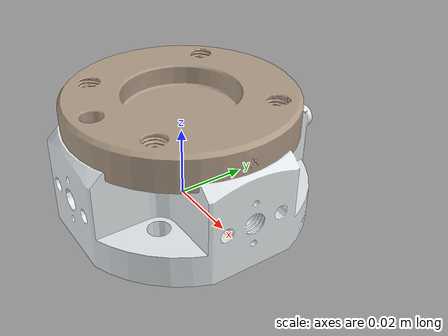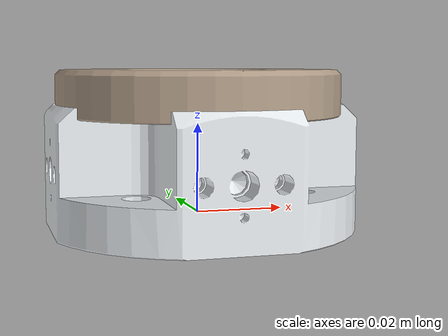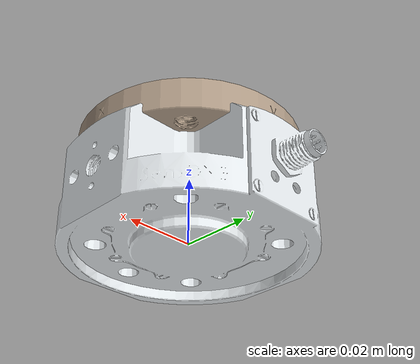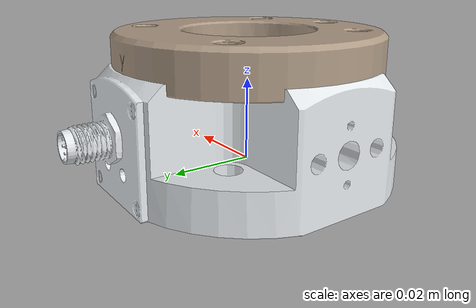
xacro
<?xml version="1.0"?>
<robot xmlns:xacro="http://wiki.ros.org/xacro"
       name="sensor" >

  <xacro:arg name="prefix" default="ft_sensor0"/>

  <xacro:include filename="$(find rokubimini_description)/urdf/BFT_ROKA_SER_M8.urdf.xacro" />

  <xacro:BFT_ROKA_SER_M8 prefix="$(arg prefix)" />

  <link name="world" />

  <joint name="world_joint" type="fixed">
    <parent link="world" />
    <child link = "ft_sensor0_mounting" />
    <origin xyz="0.0 0.0 0.0" rpy="0.0 0.0 0.0" />
  </joint>

</robot>

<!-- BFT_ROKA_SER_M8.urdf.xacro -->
<robot xmlns:xacro="http://wiki.ros.org/xacro">
  <xacro:macro name="BFT_ROKA_SER_M8" params="prefix">
    <link
      name="${prefix}_mounting">
      <inertial>
        <origin
          xyz="-3.6131E-05 -5.364E-05 0.013613"
          rpy="0 0 0" />
        <mass
          value="0.068481" />
        <inertia
          ixx="1.7686E-05"
          ixy="1.3199E-11"
          ixz="-5.7809E-10"
          iyy="1.7688E-05"
          iyz="-2.2662E-10"
          izz="2.7422E-05" />
      </inertial>
      <visual>
        <origin
          xyz="0 0 0"
          rpy="0 0 0" />
        <geometry>
          <mesh
            filename="package://rokubimini_description/meshes/BFT_ROKA_SER_M8/mounting.STL" />
        </geometry>
        <material
          name="Bota_material">
          <color
            rgba="0.89804 0.91765 0.92941 1" />
        </material>
      </visual>
      <collision>
        <origin
          xyz="0 0 0.0155"
          rpy="0 0 0" />
        <geometry>
          <cylinder radius="0.024" length="0.031"/>
        </geometry>
      </collision>
      <collision>
        <origin
          xyz="0 0 -0.005"
          rpy="0 0 0" />
        <geometry>
          <cylinder radius="0.009" length="0.010"/>
        </geometry>
      </collision>
      <collision>
        <origin
          xyz="0 0 -0.026"
          rpy="0 0 0" />
        <geometry>
          <cylinder radius="0.0065" length="0.032"/>
        </geometry>
      </collision>
    </link>
    <link
      name="${prefix}_wrench">
      <inertial>
        <origin
          xyz="-1.6253E-08 6.5136E-06 -0.0075009"
          rpy="0 0 0" />
        <mass
          value="0.028727" />
        <inertia
          ixx="3.2695E-06"
          ixy="9.1326E-13"
          ixz="-1.2355E-12"
          iyy="3.2665E-06"
          iyz="-3.9713E-10"
          izz="5.081E-06" />
      </inertial>
      <visual>
        <origin
          xyz="0 0 0"
          rpy="0 0 0" />
        <geometry>
          <mesh
            filename="package://rokubimini_description/meshes/BFT_ROKA_SER_M8/wrench.STL" />
        </geometry>
        <material
          name="Bota_material">
          <color
            rgba="0.6902 0.61176 0.52941 1" />
        </material>
      </visual>
      <collision>
        <origin
          xyz="0 0 -0.009"
          rpy="0 0 0" />
        <geometry>
          <cylinder radius="0.019" length="0.018"/>
        </geometry>
      </collision>
    </link>
    <joint
      name="mounting_to_wrench"
      type="fixed">
      <origin
        xyz="0 0 0.032"
        rpy="0 0 0" />
      <parent
        link="${prefix}_mounting" />
      <child
        link="${prefix}_wrench" />
      <axis
        xyz="0 0 0" />
    </joint>
  </xacro:macro>
</robot>
